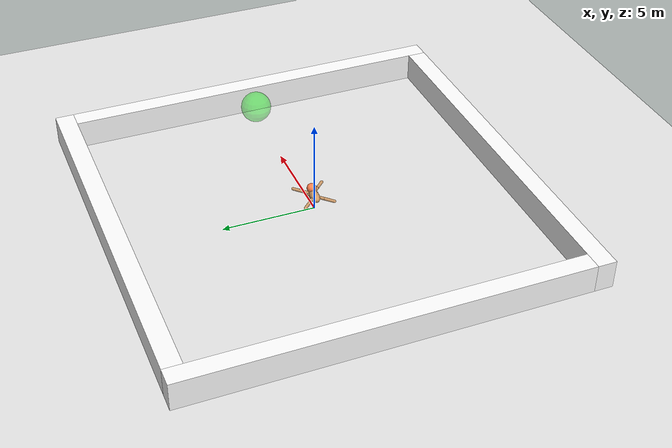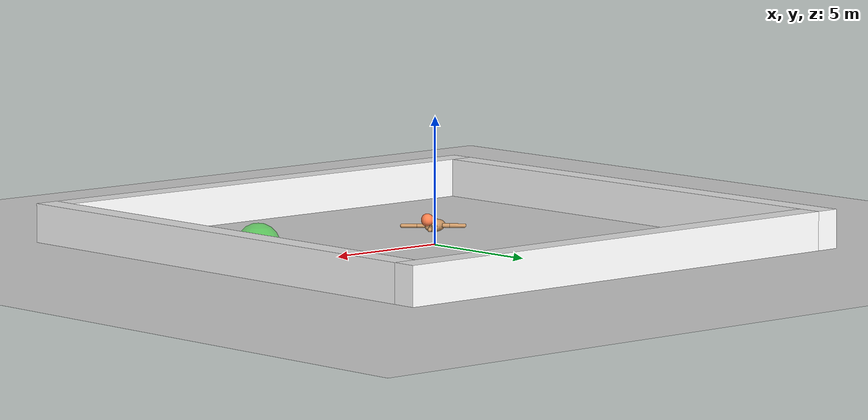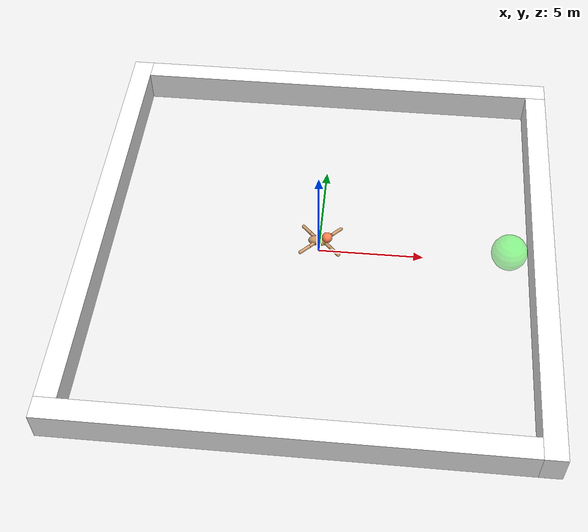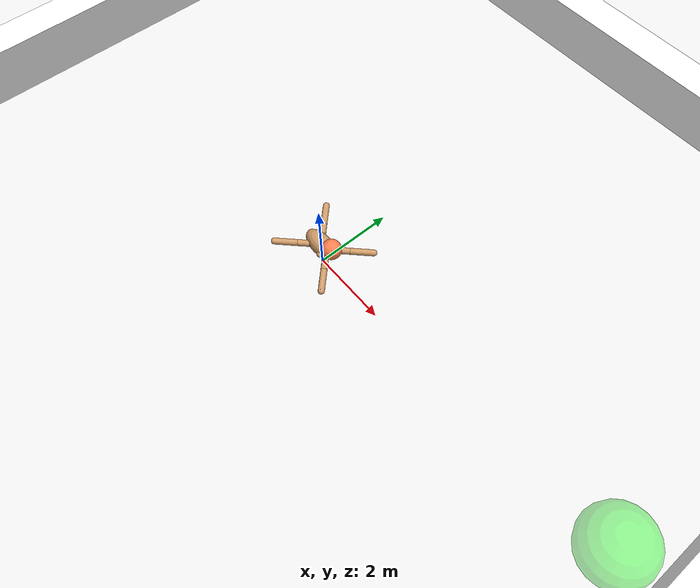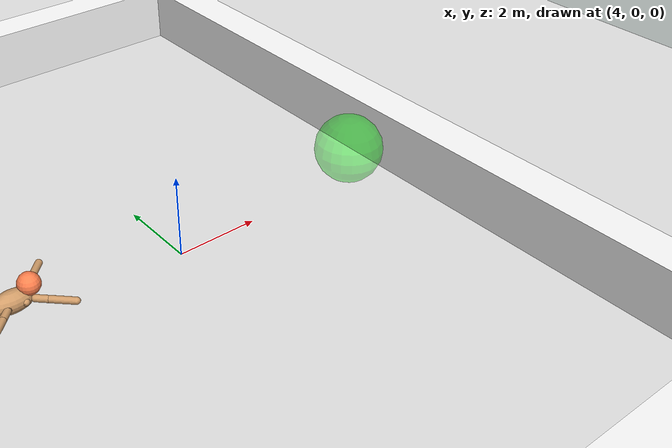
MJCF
<mujoco model="ant">
  <compiler angle="degree" coordinate="local" inertiafromgeom="true" settotalmass="40" eulerseq="XYZ"/>
  <option integrator="RK4" timestep="0.005"/>
  <custom>
    <numeric data="0.0 0.0 0.55 1.0 0.0 0.0 0.0 0.0 1.0 0.0 -1.0 0.0 -1.0 0.0 1.0" name="init_qpos"/>
  </custom>
  <default>
    <joint armature="1" damping="1" limited="true"/>
    <geom conaffinity="1" contype="1" condim="3" density="5.0" friction="1 0.5 0.5" margin="0.01" rgba="0.8 0.6 0.4 1" material="geom"/>
  </default>
    <asset>
        <texture type="skybox" builtin="gradient" rgb1=".1 .12 .15" rgb2="0 0 0" width="100" height="100"/>
        <texture builtin="checker" height="100" name="texplane" rgb1=".35 .65 .65" rgb2=".0 .4 0.6" type="2d" width="100"/>
        <material name="MatPlane" reflectance="0.25" shininess="1" specular="1" texrepeat="25 25" texture="texplane"/>
        <texture builtin="flat" height="1278" mark="cross" markrgb="1 1 1" name="texgeom" random="0.01" rgb1="0.8 0.6 0.4" rgb2="0.8 0.6 0.4" type="cube" width="127"/>
        <material name="geom" texture="texgeom" texuniform="true"/>
    </asset>
  <worldbody>
    <light directional="true" cutoff="100" exponent="1" diffuse="1 1 1" specular=".1 .1 .1" pos="0 0 1.3" dir="-0 0 -1.3" />
    <geom name='floor' material="MatPlane" pos='0 0 0' size='40 40 40' type='plane' rgba='0.9 0.9 0.9 1' condim='3' group="1"/>

    <geom name="wall-0" pos=" -0.5 -10.5  0.5" rgba="1. 1. 1. 1" size="10.5   0.5  1.0" type="box" material="" group="1" />
    <geom name="wall-1" pos="-10.5   0.5  0.5" rgba="1. 1. 1. 1" size=" 0.5  10.5  1.0" type="box" material="" group="1" />
    <geom name="wall-2" pos="  0.5  10.5  0.5" rgba="1. 1. 1. 1" size="10.5   0.5  1.0" type="box" material="" group="1" />
    <geom name="wall-3" pos=" 10.5  -0.5  0.5" rgba="1. 1. 1. 1" size=" 0.5  10.5  1.0" type="box" material="" group="1" />

    <site name="s-wall-0" pos=" -0.5 -10.5  0.5" rgba="1. 1. 1. 1" size="10.5   0.5  1.0" type="box" material="" group="1" />
    <site name="s-wall-1" pos="-10.5   0.5  0.5" rgba="1. 1. 1. 1" size=" 0.5  10.5  1.0" type="box" material="" group="1" />
    <site name="s-wall-2" pos="  0.5  10.5  0.5" rgba="1. 1. 1. 1" size="10.5   0.5  1.0" type="box" material="" group="1" />
    <site name="s-wall-3" pos=" 10.5  -0.5  0.5" rgba="1. 1. 1. 1" size=" 0.5  10.5  1.0" type="box" material="" group="1" />

    <camera name="global_camera" mode="fixed" pos="0 0 30.0" xyaxes="1 0 0 0 1 0"/>
    <camera name="global_camera_2" mode="fixed" pos="-15.5 -15.5 25.0" euler="40 0 -45"/>

    <body name="torso" pos="0 0 0.75">
      <geom name="torso_geom" pos="0 0 0" size="0.50 0.25 0.25" type="ellipsoid"/>
      <body name="head" pos="0.4 0 0.25">
        <camera name="front_camera" mode="fixed" pos="0 0 0" euler="90 0 -90"/>
        <geom name="head_geom" density="0.01" rgba="1.0 0.5 0.3 1" pos="0.0 0.0 0.0" size="0.25" type="sphere"/>
        <site name="head_site" pos="0.0 0.0 0.0" size="0.005" type="sphere"/>
      </body>
      <joint armature="0" damping="0" limited="false" margin="0.01" name="root" pos="0 0 0" type="free"/>
      <body name="front_left_leg" pos="0 0 0">
        <geom fromto="0.0 0.0 0.0 0.2 0.2 0.0" name="aux_1_geom" size="0.08" type="capsule"/>
        <body name="aux_1" pos="0.4 0.2 0">
          <joint axis="0 0 1" name="hip_1" pos="0.0 0.0 0.0" range="-30 30" type="hinge"/>
          <geom fromto="0.0 0.0 0.0 0.2 0.2 0.0" name="front_left_leg_geom" size="0.08" type="capsule"/>
          <site fromto="0.0 0.0 0.0 0.2 0.2 0.0" name="front_left_leg_site" size="0.005" type="capsule"/>
          <body pos="0.2 0.2 0">
            <joint axis="-1 1 0" name="ankle_1" pos="0.0 0.0 0.0" range="30 70" type="hinge"/>
            <geom fromto="0.0 0.0 0.0 0.4 0.4 0.0" name="front_left_ankle_geom" size="0.08" type="capsule"/>
            <site fromto="0.0 0.0 0.0 0.4 0.4 0.0" name="front_left_ankle_site" size="0.005" type="capsule"/>
          </body>
        </body>
      </body>
      <body name="front_right_leg" pos="0 0 0">
        <geom fromto="0.0 0.0 0.0 -0.2 0.2 0.0" name="aux_2_geom" size="0.08" type="capsule"/>
        <body name="aux_2" pos="-0.2 0.2 0">
          <joint axis="0 0 1" name="hip_2" pos="0.0 0.0 0.0" range="-30 30" type="hinge"/>
          <geom fromto="0.0 0.0 0.0 -0.2 0.2 0.0" name="front_right_leg_geom" size="0.08" type="capsule"/>
          <body pos="-0.2 0.2 0">
            <joint axis="1 1 0" name="ankle_2" pos="0.0 0.0 0.0" range="-70 -30" type="hinge"/>
            <geom fromto="0.0 0.0 0.0 -0.4 0.4 0.0" name="front_right_ankle_geom" size="0.08" type="capsule"/>
          </body>
        </body>
      </body>
      <body name="back_leg" pos="0 0 0">
        <geom fromto="0.0 0.0 0.0 -0.2 -0.2 0.0" name="aux_3_geom" size="0.08" type="capsule"/>
        <body name="aux_3" pos="-0.2 -0.2 0">
          <joint axis="0 0 1" name="hip_3" pos="0.0 0.0 0.0" range="-30 30" type="hinge"/>
          <geom fromto="0.0 0.0 0.0 -0.2 -0.2 0.0" name="left_back_leg_geom" size="0.08" type="capsule"/>
          <body pos="-0.2 -0.2 0">
            <joint axis="-1 1 0" name="ankle_3" pos="0.0 0.0 0.0" range="-70 -30" type="hinge"/>
            <geom fromto="0.0 0.0 0.0 -0.4 -0.4 0.0" name="left_back_ankle_geom" size="0.08" type="capsule"/>
          </body>
        </body>
      </body>
      <body name="right_back_leg" pos="0 0 0">
        <geom fromto="0.0 0.0 0.0 0.2 -0.2 0.0" name="aux_4_geom" size="0.08" type="capsule"/>
        <body name="aux_4" pos="0.4 -0.2 0">
          <joint axis="0 0 1" name="hip_4" pos="0.0 0.0 0.0" range="-30 30" type="hinge"/>
          <geom fromto="0.0 0.0 0.0 0.2 -0.2 0.0" name="right_back_leg_geom" size="0.08" type="capsule"/>
          <body pos="0.2 -0.2 0">
            <joint axis="1 1 0" name="ankle_4" pos="0.0 0.0 0.0" range="30 70" type="hinge"/>
            <geom fromto="0.0 0.0 0.0 0.4 -0.4 0.0" name="right_back_ankle_geom" size="0.08" type="capsule"/>
          </body>
        </body>
      </body>
    </body>
    <site name="target_0" pos=" 9  0 0.85" rgba="0.05 0.7 0.1 0.0" size="0.85" type="sphere" group="1" />
    <site name="target_1" pos=" 7  0 0.85" rgba="0.05 0.7 0.1 0.0" size="0.85" type="sphere" group="1" />
    <site name="target_2" pos=" 5  0 0.85" rgba="0.05 0.7 0.1 0.0" size="0.85" type="sphere" group="1" />
    <site name="target_3" pos=" 3  0 0.85" rgba="0.05 0.7 0.1 0.0" size="0.85" type="sphere" group="1" />
    <site name="target_4" pos="-3  0 0.85" rgba="0.05 0.7 0.1 0.0" size="0.85" type="sphere" group="1" />
    <site name="target_5" pos="-5  0 0.85" rgba="0.05 0.7 0.1 0.0" size="0.85" type="sphere" group="1" />
    <site name="target_6" pos="-7  0 0.85" rgba="0.05 0.7 0.1 0.0" size="0.85" type="sphere" group="1" />
    <site name="target_7" pos="-9  0 0.85" rgba="0.05 0.7 0.1 0.0" size="0.85" type="sphere" group="1" />
    <site name="target_8" pos="-9  0 0.85" rgba="0.05 0.7 0.1 0.0" size="0.85" type="sphere" group="1" />
    <site name="target_9" pos="-9  0 0.85" rgba="0.05 0.7 0.1 0.0" size="0.85" type="sphere" group="1" />
    <site name="target_10" pos="-9  6 0.85" rgba="0.05 0.7 0.1 0.0" size="0.85" type="sphere" group="1" />
    <site name="target_11" pos="-9  6 0.85" rgba="0.05 0.7 0.1 0.0" size="0.85" type="sphere" group="1" />
    <geom name="target_g0" pos=" 9  0 0.85" rgba="0.0 1.0 0.0 0.4" size="0.85" type="sphere" group="1" contype="0" conaffinity="0" />
    <geom name="target_g1" pos=" 9  0 0.85" rgba="0.0 1.0 0.0 0.4" size="0.85" type="sphere" group="1" contype="0" conaffinity="0" />
    <geom name="target_g2" pos=" 9  0 0.85" rgba="0.0 1.0 0.0 0.4" size="0.85" type="sphere" group="1" contype="0" conaffinity="0" />
    <geom name="target_g3" pos=" 9  0 0.85" rgba="0.0 1.0 0.0 0.4" size="0.85" type="sphere" group="1" contype="0" conaffinity="0" />
    <geom name="target_g4" pos=" 9  0 0.85" rgba="0.0 1.0 0.0 0.4" size="0.85" type="sphere" group="1" contype="0" conaffinity="0" />
    <geom name="target_g5" pos=" 9  0 0.85" rgba="0.0 1.0 0.0 0.4" size="0.85" type="sphere" group="1" contype="0" conaffinity="0" />
    <geom name="target_g6" pos=" 9  0 0.85" rgba="0.0 1.0 0.0 0.4" size="0.85" type="sphere" group="1" contype="0" conaffinity="0" />
    <geom name="target_g7" pos=" 9  0 0.85" rgba="0.0 1.0 0.0 0.4" size="0.85" type="sphere" group="1" contype="0" conaffinity="0" />
    <geom name="target_g8" pos=" 9  0 0.85" rgba="0.0 1.0 0.0 0.4" size="0.85" type="sphere" group="1" contype="0" conaffinity="0" />
    <geom name="target_g9" pos=" 9  0 0.85" rgba="0.0 1.0 0.0 0.4" size="0.85" type="sphere" group="1" contype="0" conaffinity="0" />
    <geom name="target_g10" pos=" 9  0 0.85" rgba="0.0 1.0 0.0 0.4" size="0.85" type="sphere" group="1" contype="0" conaffinity="0" />
    <geom name="target_g11" pos=" 9  0 0.85" rgba="0.0 1.0 0.0 0.4" size="0.85" type="sphere" group="1" contype="0" conaffinity="0" />
  </worldbody>
  <actuator>
    <motor ctrllimited="true" ctrlrange="-1.0 1.0" joint="hip_4" gear="150"/>
    <motor ctrllimited="true" ctrlrange="-1.0 1.0" joint="ankle_4" gear="150"/>
    <motor ctrllimited="true" ctrlrange="-1.0 1.0" joint="hip_1" gear="150"/>
    <motor ctrllimited="true" ctrlrange="-1.0 1.0" joint="ankle_1" gear="150"/>
    <motor ctrllimited="true" ctrlrange="-1.0 1.0" joint="hip_2" gear="150"/>
    <motor ctrllimited="true" ctrlrange="-1.0 1.0" joint="ankle_2" gear="150"/>
    <motor ctrllimited="true" ctrlrange="-1.0 1.0" joint="hip_3" gear="150"/>
    <motor ctrllimited="true" ctrlrange="-1.0 1.0" joint="ankle_3" gear="150"/>
  </actuator>
  <sensor>
    <touch site="s-wall-0" cutoff="400"/>
    <touch site="s-wall-1" cutoff="400"/>
    <touch site="s-wall-2" cutoff="400"/>
    <touch site="s-wall-3" cutoff="400"/>
    <touch site="target_0" cutoff="400"/>
    <touch site="target_1" cutoff="400"/>
    <touch site="target_2" cutoff="400"/>
    <touch site="target_3" cutoff="400"/>
    <touch site="target_4" cutoff="400"/>
    <touch site="target_5" cutoff="400"/>
    <touch site="target_6" cutoff="400"/>
    <touch site="target_7" cutoff="400"/>
    <touch site="target_8" cutoff="400"/>
    <touch site="target_9" cutoff="400"/>
    <touch site="target_10" cutoff="400"/>
    <touch site="target_11" cutoff="400"/>
  </sensor>
</mujoco>
